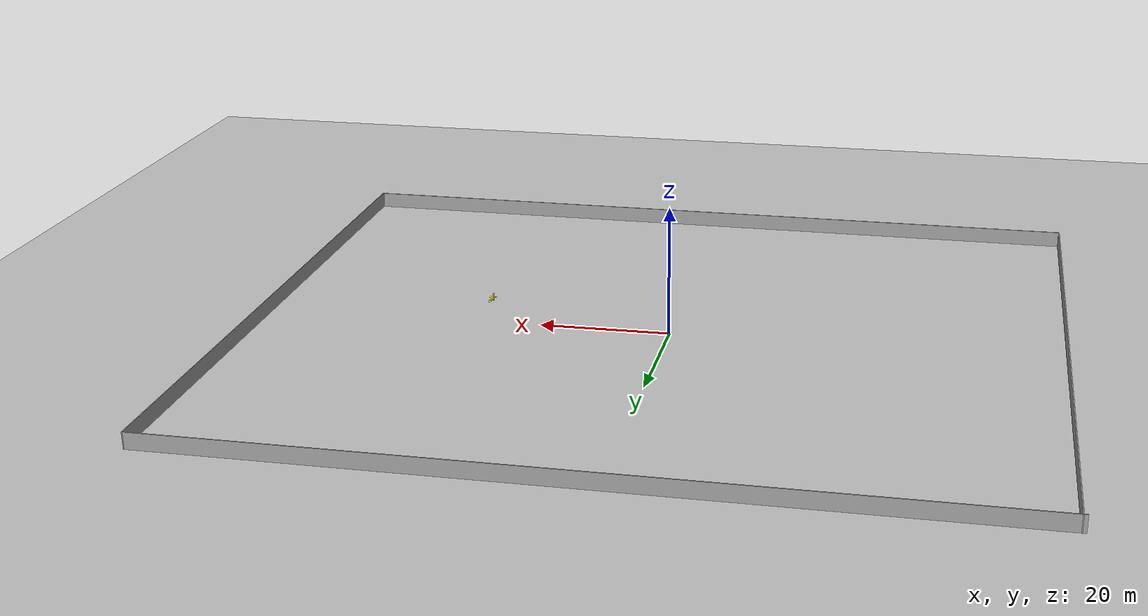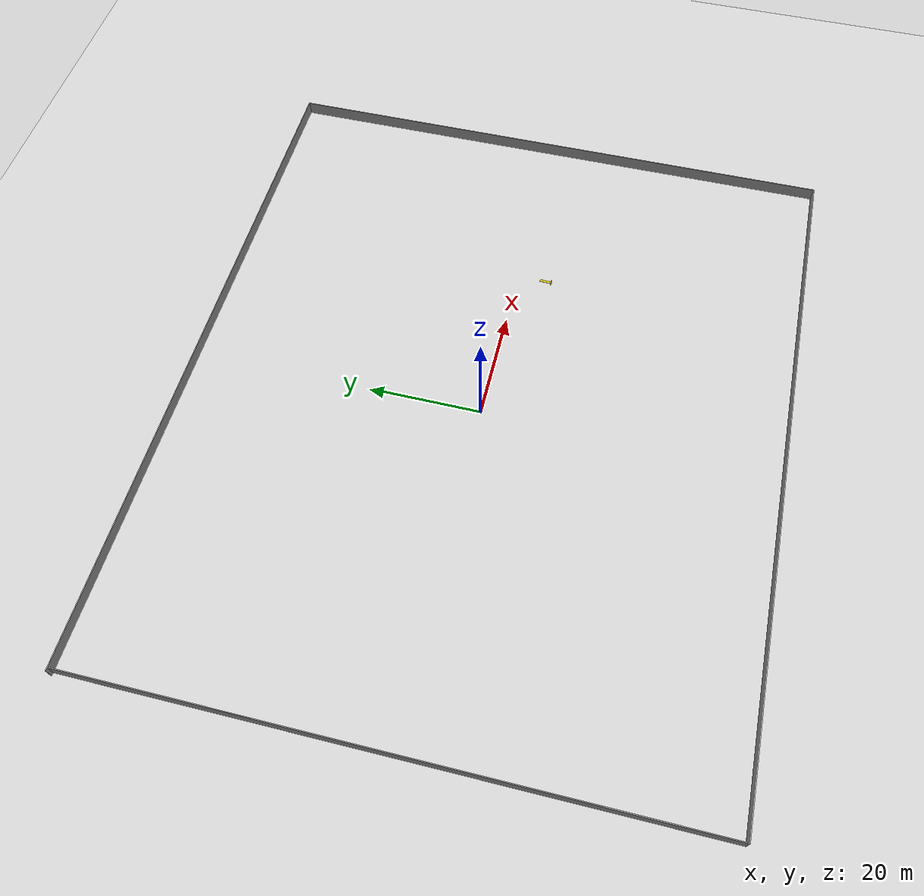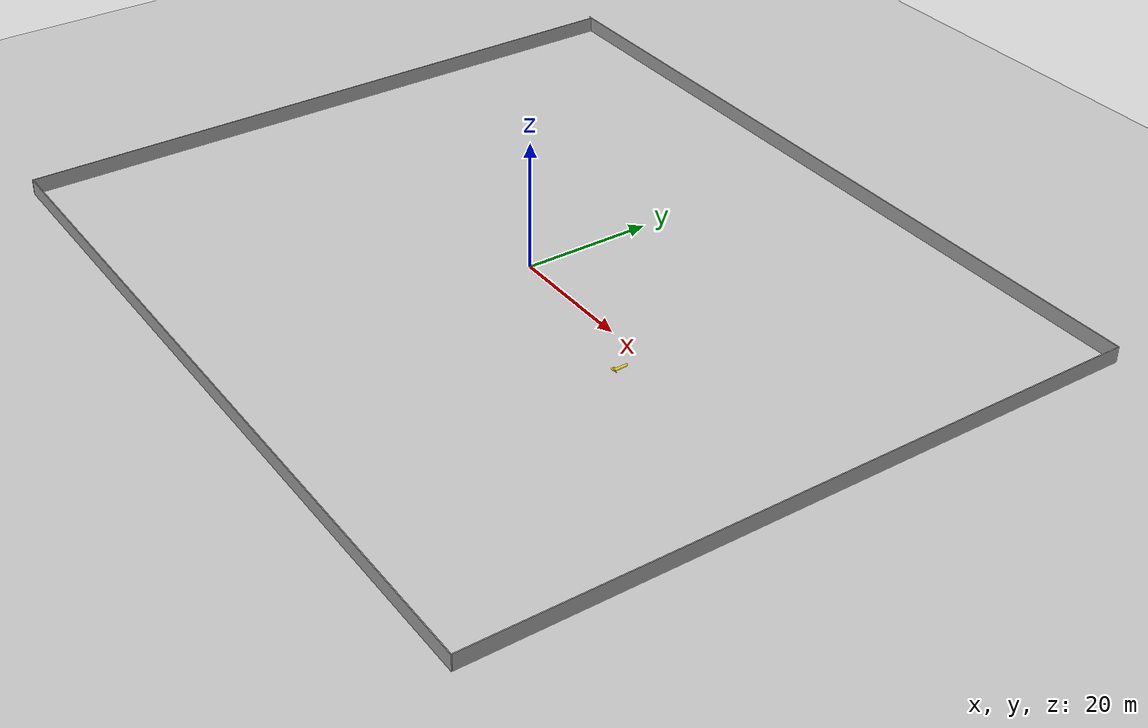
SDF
<sdf version="1.6">
 <world name="default">
  <model name="ground_plane">
   <static>1</static>
   <link name="link">
    <collision name="collision">
     <geometry><plane><normal>0 0 1</normal><size>100 100</size></plane></geometry>
     <surface><friction><ode><mu>100</mu><mu2>50</mu2></ode></friction></surface>
    </collision>
    <visual name="visual">
     <cast_shadows>0</cast_shadows>
     <geometry><plane><normal>0 0 1</normal><size>100 100</size></plane></geometry>
     <material>
      <script><uri>file://media/materials/scripts/gazebo.material</uri><name>Gazebo/Grey</name></script>
     </material>
    </visual>
   </link>
  </model>
  <model name="Untitled">
   <pose>1.72088 0.025843 0 0 -0 0</pose>
   <link name="Wall_2">
    <collision name="Wall_2_Collision">
     <geometry><box><size>122.25 0.15 2.5</size></box></geometry>
     <pose>0 0 1.25 0 -0 0</pose>
    </collision>
    <visual name="Wall_2_Visual">
     <pose>0 0 1.25 0 -0 0</pose>
     <geometry><box><size>122.25 0.15 2.5</size></box></geometry>
     <material>
      <script><uri>file://media/materials/scripts/gazebo.material</uri><name>Gazebo/Grey</name></script>
      <ambient>1 1 1 1</ambient>
     </material>
     <meta><layer>0</layer></meta>
    </visual>
    <pose>-4e-06 51.675 0 0 -0 0</pose>
   </link>
   <link name="Wall_4">
    <collision name="Wall_4_Collision">
     <geometry><box><size>103.5 0.15 2.5</size></box></geometry>
     <pose>0 0 1.25 0 -0 0</pose>
    </collision>
    <visual name="Wall_4_Visual">
     <pose>0 0 1.25 0 -0 0</pose>
     <geometry><box><size>103.5 0.15 2.5</size></box></geometry>
     <material>
      <script><uri>file://media/materials/scripts/gazebo.material</uri><name>Gazebo/Grey</name></script>
      <ambient>1 1 1 1</ambient>
     </material>
     <meta><layer>0</layer></meta>
    </visual>
    <pose>61.05 2e-06 0 0 0 -1.5708</pose>
   </link>
   <link name="Wall_5">
    <collision name="Wall_5_Collision">
     <geometry><box><size>121.75 0.15 2.5</size></box></geometry>
     <pose>0 0 1.25 0 -0 0</pose>
    </collision>
    <visual name="Wall_5_Visual">
     <pose>0 0 1.25 0 -0 0</pose>
     <geometry><box><size>121.75 0.15 2.5</size></box></geometry>
     <material>
      <script><uri>file://media/materials/scripts/gazebo.material</uri><name>Gazebo/Grey</name></script>
      <ambient>1 1 1 1</ambient>
     </material>
     <meta><layer>0</layer></meta>
    </visual>
    <pose>0.249996 -51.675 0 0 -0 3.14159</pose>
   </link>
   <link name="Wall_6">
    <collision name="Wall_6_Collision">
     <geometry><box><size>103.5 0.15 2.5</size></box></geometry>
     <pose>0 0 1.25 0 -0 0</pose>
    </collision>
    <visual name="Wall_6_Visual">
     <pose>0 0 1.25 0 -0 0</pose>
     <geometry><box><size>103.5 0.15 2.5</size></box></geometry>
     <material>
      <script><uri>file://media/materials/scripts/gazebo.material</uri><name>Gazebo/Grey</name></script>
      <ambient>1 1 1 1</ambient>
     </material>
     <meta><layer>0</layer></meta>
    </visual>
    <pose>-60.55 2e-06 0 0 -0 1.5708</pose>
   </link>
   <static>1</static>
  </model>
  <model name="submarine">
   <pose>29.1796 -5.16292 1.65793 1.60414 -0 0</pose>
   <link name="body">
    <inertial>
     <mass>251.327</mass>
     <inertia><ixx>86.2891</ixx><ixy>0</ixy><ixz>0</ixz><iyy>86.2891</iyy><iyz>0</iyz><izz>5.02655</izz></inertia>
    </inertial>
    <visual name="body_visual">
     <geometry><cylinder><radius>0.2</radius><length>2</length></cylinder></geometry>
     <material>
      <script><uri>file://media/materials/scripts/gazebo.material</uri><name>Gazebo/Yellow</name></script>
     </material>
    </visual>
    <collision name="body_collision">
     <geometry><cylinder><radius>0.2</radius><length>2</length></cylinder></geometry>
    </collision>
    <visual name="spacer_visual">
     <pose>0 0 1.05855 0 -0 0</pose>
     <geometry><cylinder><radius>0.0933402</radius><length>0.127211</length></cylinder></geometry>
     <material>
      <script><uri>file://media/materials/scripts/gazebo.material</uri><name>Gazebo/Yellow</name></script>
     </material>
    </visual>
   </link>
   <link name="propeller">
    <pose>0 0 1.09 3.14159 -0 0</pose>
    <inertial>
     <mass>21.82</mass>
     <inertia>
      <ixx>0.459994</ixx>
      <ixy>0</ixy>
      <ixz>0</ixz>
      <iyy>0.459994</iyy>
      <iyz>0</iyz>
      <izz>0.909167</izz>
     </inertia>
    </inertial>
    <visual name="blade1_visual">
     <pose>0.34334 0 0 0.785398 -0 0</pose>
     <geometry><box><size>0.5 0.2 0.05455</size></box></geometry>
     <material>
      <script><uri>file://media/materials/scripts/gazebo.material</uri><name>Gazebo/Yellow</name></script>
     </material>
    </visual>
    <collision name="blade1_collision">
     <pose>0.34334 0 0 0.785398 -0 0</pose>
     <geometry><box><size>0.5 0.2 0.05455</size></box></geometry>
    </collision>
    <visual name="blade2_visual">
     <pose>0 0.34334 0 0.785398 0 1.5708</pose>
     <geometry><box><size>0.5 0.2 0.05455</size></box></geometry>
     <material>
      <script><uri>file://media/materials/scripts/gazebo.material</uri><name>Gazebo/Yellow</name></script>
     </material>
    </visual>
    <collision name="blade2_collision">
     <pose>0 0.34334 0 0.785398 0 1.5708</pose>
     <geometry><box><size>0.5 0.2 0.05455</size></box></geometry>
    </collision>
    <visual name="blade3_visual">
     <pose>-0.34334 -0 0 -0.785398 0 0</pose>
     <geometry><box><size>0.5 0.2 0.05455</size></box></geometry>
     <material>
      <script><uri>file://media/materials/scripts/gazebo.material</uri><name>Gazebo/Yellow</name></script>
     </material>
    </visual>
    <collision name="blade3_collision">
     <pose>-0.34334 -0 0 -0.785398 0 0</pose>
     <geometry><box><size>0.5 0.2 0.05455</size></box></geometry>
    </collision>
    <visual name="blade4_visual">
     <pose>-0 -0.34334 0 -0.785398 -0 1.5708</pose>
     <geometry><box><size>0.5 0.2 0.05455</size></box></geometry>
     <material>
      <script><uri>file://media/materials/scripts/gazebo.material</uri><name>Gazebo/Yellow</name></script>
     </material>
    </visual>
    <collision name="blade4_collision">
     <pose>-0 -0.34334 0 -0.785398 -0 1.5708</pose>
     <geometry><box><size>0.5 0.2 0.05455</size></box></geometry>
    </collision>
   </link>
   <joint name="spinning_joint" type="revolute">
    <parent>body</parent>
    <child>propeller</child>
    <axis>
     <xyz>0 0 1</xyz>
     <use_parent_model_frame>1</use_parent_model_frame>
     <limit><lower>-1e+12</lower><upper>1e+12</upper><effort>-1</effort><velocity>-1</velocity></limit>
     <dynamics><spring_reference>0</spring_reference><spring_stiffness>0</spring_stiffness></dynamics>
    </axis>
   </joint>
   <plugin name="submarine_propeller_1" filename="libLiftDragPlugin.so">
    <air_density>1000</air_density>
    <cla>1.2535816618911175</cla>
    <cla_stall>-1.4326647564469914</cla_stall>
    <cda>0</cda>
    <cda_stall>1.4326647564469914</cda_stall>
    <alpha_stall>1.396</alpha_stall>
    <a0>0</a0>
    <area>0.27637</area>
    <upward>0 -0.7071067811865476 -0.7071067811865475</upward>
    <forward>0 -0.7071067811865475 0.7071067811865476</forward>
    <link_name>propeller</link_name>
    <cp>0.35 0 0</cp>
   </plugin>
   <plugin name="submarine_propeller_2" filename="libLiftDragPlugin.so">
    <air_density>1000</air_density>
    <cla>1.2535816618911175</cla>
    <cla_stall>-1.4326647564469914</cla_stall>
    <cda>0</cda>
    <cda_stall>1.4326647564469914</cda_stall>
    <alpha_stall>1.396</alpha_stall>
    <a0>0</a0>
    <area>0.27637</area>
    <upward>-0.7071067811865475 0 -0.7071067811865476</upward>
    <forward>-0.7071067811865476 0 0.7071067811865475</forward>
    <link_name>propeller</link_name>
    <cp>0 -0.35 0</cp>
   </plugin>
   <plugin name="submarine_propeller_3" filename="libLiftDragPlugin.so">
    <air_density>1000</air_density>
    <cla>1.2535816618911175</cla>
    <cla_stall>-1.4326647564469914</cla_stall>
    <cda>0</cda>
    <cda_stall>1.4326647564469914</cda_stall>
    <alpha_stall>1.396</alpha_stall>
    <a0>0</a0>
    <area>0.27637</area>
    <upward>0 0.7071067811865475 -0.7071067811865476</upward>
    <forward>0 -0.7071067811865476 -0.7071067811865475</forward>
    <link_name>propeller</link_name>
    <cp>-0.35 0 0</cp>
   </plugin>
   <plugin name="submarine_propeller_4" filename="libLiftDragPlugin.so">
    <air_density>1000</air_density>
    <cla>1.2535816618911175</cla>
    <cla_stall>-1.4326647564469914</cla_stall>
    <cda>0</cda>
    <cda_stall>1.4326647564469914</cda_stall>
    <alpha_stall>1.396</alpha_stall>
    <a0>0</a0>
    <area>0.27637</area>
    <upward>0.7071067811865476 0 -0.7071067811865475</upward>
    <forward>0.7071067811865475 0 0.7071067811865476</forward>
    <link_name>propeller</link_name>
    <cp>0 0.35 0</cp>
   </plugin>
   <plugin name="buoyancy" filename="libBuoyancyPlugin.so"><fluid_density>1000</fluid_density></plugin>
  </model>
 </world>
</sdf>
